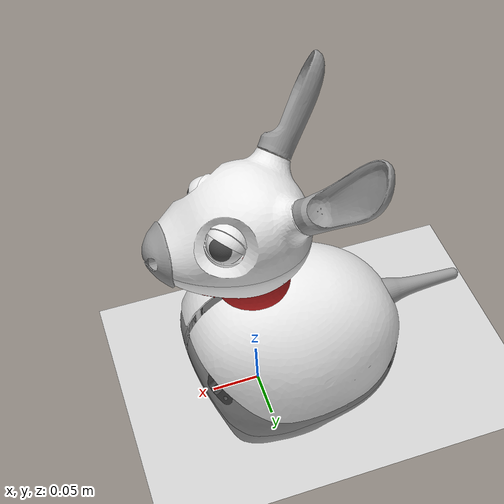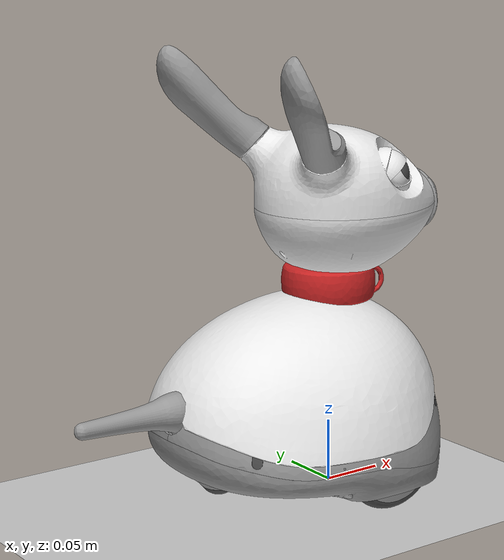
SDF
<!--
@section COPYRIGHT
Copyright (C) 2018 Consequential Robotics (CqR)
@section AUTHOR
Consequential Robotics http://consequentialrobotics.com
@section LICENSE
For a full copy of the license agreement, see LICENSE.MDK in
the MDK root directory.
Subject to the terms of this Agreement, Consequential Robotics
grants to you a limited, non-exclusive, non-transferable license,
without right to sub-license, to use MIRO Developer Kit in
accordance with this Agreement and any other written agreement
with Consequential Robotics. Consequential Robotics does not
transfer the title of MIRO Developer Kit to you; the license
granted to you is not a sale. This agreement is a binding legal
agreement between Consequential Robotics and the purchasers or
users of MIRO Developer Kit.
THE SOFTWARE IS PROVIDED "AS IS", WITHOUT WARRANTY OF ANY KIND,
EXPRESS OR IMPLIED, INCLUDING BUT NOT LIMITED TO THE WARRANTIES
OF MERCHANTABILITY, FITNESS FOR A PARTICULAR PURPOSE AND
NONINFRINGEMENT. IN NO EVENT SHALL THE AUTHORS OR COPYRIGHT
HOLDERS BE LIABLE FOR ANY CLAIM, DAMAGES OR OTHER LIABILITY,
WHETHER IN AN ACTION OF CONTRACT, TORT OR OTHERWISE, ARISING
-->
<?xml version="1.0"?>

<sdf version='1.5'>
	<world name='default'>

		<physics name='default_physics' default='0' type='ode'>
			<max_step_size>0.001</max_step_size>
			<real_time_factor>1</real_time_factor>
			<real_time_update_rate>1000</real_time_update_rate>
		</physics>

		<scene>
			<ambient>0.4 0.4 0.4 1</ambient>
			<background>0.7 0.7 0.7 1</background>
			<shadows>1</shadows>
		</scene>

		<light name='sun' type='directional'>
			<cast_shadows>1</cast_shadows>
			<pose frame=''>0 0 10 0 -0 0</pose>
			<diffuse>0.8 0.8 0.8 1</diffuse>
			<specular>0.1 0.1 0.1 1</specular>
			<attenuation>
				<range>1000</range>
				<constant>0.9</constant>
				<linear>0.01</linear>
				<quadratic>0.001</quadratic>
			</attenuation>
			<direction>-0.5 0.5 -1</direction>
		</light>

		<model name='ground_plane'>
			<static>1</static>
			<link name='link'>
				<collision name='collision'>
					<geometry>
						<plane>
						<normal>0 0 1</normal>
						<size>100 100</size>
						</plane>
					</geometry>
					<surface>
						<friction>
							<ode>
								<mu>1</mu>
								<mu2>1</mu2>
							</ode>
							<torsional>
								<ode/>
							</torsional>
						</friction>
						<contact>
							<ode/>
						</contact>
						<bounce/>
					</surface>
					<max_contacts>10</max_contacts>
				</collision>
				<visual name='visual'>
					<cast_shadows>0</cast_shadows>
					<geometry>
						<plane>
							<normal>0 0 1</normal>
							<size>100 100</size>
						</plane>
					</geometry>
					<material>
						<script>
							<uri>file://media/materials/scripts/gazebo.material</uri>
							<name>Gazebo/Grey</name>
						</script>
					</material>
				</visual>
				<self_collide>0</self_collide>
				<kinematic>0</kinematic>
				<gravity>1</gravity>
			</link>
		</model>

		<gravity>0 0 -9.8</gravity>
		<magnetic_field>6e-06 2.3e-05 -4.2e-05</magnetic_field>
		<atmosphere type='adiabatic'/>

		<spherical_coordinates>
			<surface_model>EARTH_WGS84</surface_model>
			<latitude_deg>0</latitude_deg>
			<longitude_deg>0</longitude_deg>
			<elevation>0</elevation>
			<heading_deg>0</heading_deg>
		</spherical_coordinates>

		<gui fullscreen='0'>
			<camera name='user_camera'>
				<pose frame=''>1.40328 -0.966443 0.97483 0 0.45964 2.34021</pose>
				<view_controller>orbit</view_controller>
				<projection_type>perspective</projection_type>
			</camera>
		</gui>

		 <include>
                        <name>sim01</name>
                        <uri>model://miro_model</uri>
                        <pose>0 0 0 0 0 0</pose>
                </include>

	</world>
</sdf>

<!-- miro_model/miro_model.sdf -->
<sdf version="1.5">
	<model name="miro_robot">

		<include>
			<uri>model://miro_model/components/miro_body</uri>
			<pose>0 0 0 0 0 0</pose>
		</include>

		<include>
			<uri>model://miro_model/components/miro_tail</uri>
			<pose>0 0 0 0 0 0</pose>
		</include>

		<joint type="revolute" name="body_neck">
			<pose>-0.002 0 0.081 0 0 0</pose>
			<parent>miro_body::body</parent>
			<child>miro_neck::neck</child>
			<axis>
				<xyz>0 1 0</xyz>
				<limit>
					<lower>0</lower>
					<upper>1.57</upper>
				</limit>
				<dynamics>
					<spring_stiffness>0.4</spring_stiffness>
					<spring_reference>0.0</spring_reference>
					<friction>0.01</friction>
					<damping>0.1</damping>
				</dynamics>
			</axis>
		</joint>

		<include>
			<uri>model://miro_model/components/miro_neck</uri>
			<pose>0 0 0 0 0 0</pose>
		</include>

		<joint type="revolute" name="neck_gmbl">
			<pose>-0.002 0 0.201 0 0 0</pose>
			<parent>miro_neck::neck</parent>
			<child>miro_gmbl::gmbl</child>
			<axis>
				<xyz>0 0 1</xyz>
				<limit>
					<lower>-1.57</lower>
					<upper>1.57</upper>
				</limit>
				<dynamics>
					<friction>0.01</friction>
					<damping>0.1</damping>
				</dynamics>
			</axis>
		</joint>

		<include>
			<uri>model://miro_model/components/miro_gmbl</uri>
			<pose>0 0 0 0 0 0</pose>
		</include>

		<joint type="revolute" name="gmbl_head">
			<pose>-0.002 0 0.201 0 0 0</pose>
			<parent>miro_gmbl::gmbl</parent>
			<child>miro_head::head</child>
			<axis>
				<xyz>0 1 0</xyz>
				<limit>
					<lower>-1.57</lower>
					<upper>1.57</upper>
				</limit>
				<dynamics>
					<spring_stiffness>0.1</spring_stiffness>
					<spring_reference>-0.5</spring_reference>
					<friction>0.01</friction>
					<damping>0.1</damping>
				</dynamics>
			</axis>
		</joint>

		<include>
			<uri>model://miro_model/components/miro_head</uri>
			<pose>0 0 0 0 0 0</pose>
		</include>

		<plugin name="miro_model" filename="libmiro_gazebo.so"/>

	</model>
</sdf>

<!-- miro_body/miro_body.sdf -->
<sdf version="1.5">
  <model name="miro_body">
    <link name="body">
      <inertial>
        <pose>-0.060 0 0.050 0 0 0</pose>
        <mass>1.570796</mass>
        <inertia>
          <ixx>0.00523599</ixx>
          <ixy>0.0</ixy>
          <ixz>0.0</ixz>
          <iyy>0.00523599</iyy>
          <iyz>0.0</iyz>
          <izz>0.00785398</izz>
        </inertia>
      </inertial>
      <visual name="visual_valance">
        <pose>0 0 0 0 0 0</pose>
        <geometry>
          <mesh>
            <uri>model://miro_model/meshes/valance.dae</uri>
          </mesh>
        </geometry>
        <material>
          <script>
            <uri>file://media/materials/scripts/gazebo.material</uri>
            <name>Gazebo/Grey</name>
          </script>
        </material>
      </visual>
      <collision name="collision_valance">
        <pose>0 0 0 0 0 0</pose>
        <geometry>
          <mesh>
            <uri>model://miro_model/meshes/valance_collision.dae</uri>
          </mesh>
        </geometry>
        <surface>
          <friction>
            <ode>
              <mu>0.1</mu>
              <mu2>0.1</mu2>
            </ode>
          </friction>
        </surface>
      </collision>
      <visual name="visual_skirt_lh">
        <pose>0 0 0 0 0 0</pose>
        <geometry>
          <mesh>
            <uri>model://miro_model/meshes/skirt_lh.dae</uri>
          </mesh>
        </geometry>
        <material>
          <script>
            <uri>file://media/materials/scripts/gazebo.material</uri>
            <name>Gazebo/Grey</name>
          </script>
        </material>
      </visual>
      <collision name="collision_skirt_lh">
        <pose>0 0 0 0 0 0</pose>
        <geometry>
          <mesh>
            <uri>model://miro_model/meshes/skirt_lh_collision.dae</uri>
          </mesh>
        </geometry>
        <surface>
          <friction>
            <ode>
              <mu>0.1</mu>
              <mu2>0.1</mu2>
            </ode>
          </friction>
        </surface>
      </collision>
      <visual name="visual_skirt_rh">
        <pose>0 0 0 0 0 0</pose>
        <geometry>
          <mesh>
            <uri>model://miro_model/meshes/skirt_rh.dae</uri>
          </mesh>
        </geometry>
        <material>
          <script>
            <uri>file://media/materials/scripts/gazebo.material</uri>
            <name>Gazebo/Grey</name>
          </script>
        </material>
      </visual>
      <collision name="collision_skirt_rh">
        <pose>0 0 0 0 0 0</pose>
        <geometry>
          <mesh>
            <uri>model://miro_model/meshes/skirt_rh_collision.dae</uri>
          </mesh>
        </geometry>
        <surface>
          <friction>
            <ode>
              <mu>0.1</mu>
              <mu2>0.1</mu2>
            </ode>
          </friction>
        </surface>
      </collision>
      <visual name="visual_cliff_sensor_L_asm">
        <pose>0 0 0 0 0 0</pose>
        <geometry>
          <mesh>
            <uri>model://miro_model/meshes/cliff_sensor_L_asm.dae</uri>
          </mesh>
        </geometry>
        <material>
          <script>
            <uri>file://media/materials/scripts/gazebo.material</uri>
            <name>Gazebo/DarkGrey</name>
          </script>
        </material>
      </visual>
      <visual name="visual_cliff_sensor_R_asm">
        <pose>0 0 0 0 0 0</pose>
        <geometry>
          <mesh>
            <uri>model://miro_model/meshes/cliff_sensor_R_asm.dae</uri>
          </mesh>
        </geometry>
        <material>
          <script>
            <uri>file://media/materials/scripts/gazebo.material</uri>
            <name>Gazebo/DarkGrey</name>
          </script>
        </material>
      </visual>
      <visual name="visual_light_sensor_holder_asm_L">
        <pose>0 0 0 0 0 0</pose>
        <geometry>
          <mesh>
            <uri>model://miro_model/meshes/light_sensor_holder_asm_L.dae</uri>
          </mesh>
        </geometry>
        <material>
          <script>
            <uri>file://media/materials/scripts/gazebo.material</uri>
            <name>Gazebo/DarkGrey</name>
          </script>
        </material>
      </visual>
      <visual name="visual_light_sensor_holder_asm_R">
        <pose>0 0 0 0 0 0</pose>
        <geometry>
          <mesh>
            <uri>model://miro_model/meshes/light_sensor_holder_asm_R.dae</uri>
          </mesh>
        </geometry>
        <material>
          <script>
            <uri>file://media/materials/scripts/gazebo.material</uri>
            <name>Gazebo/DarkGrey</name>
          </script>
        </material>
      </visual>
      <visual name="visual_neck_mount">
        <pose>0 0 0 0 0 0</pose>
        <geometry>
          <mesh>
            <uri>model://miro_model/meshes/neck_mount.dae</uri>
          </mesh>
        </geometry>
        <material>
          <script>
            <uri>file://media/materials/scripts/gazebo.material</uri>
            <name>Gazebo/Red</name>
          </script>
        </material>
      </visual>
      <visual name="visual_body_shell">
        <pose>0 0 0 0 0 0</pose>
        <geometry>
          <mesh>
            <uri>model://miro_model/meshes/body_shell.dae</uri>
          </mesh>
        </geometry>
        <material>
          <script>
            <uri>file://media/materials/scripts/gazebo.material</uri>
            <name>Gazebo/White</name>
          </script>
        </material>
      </visual>
      <collision name="collision_body_shell">
        <pose>0 0 0 0 0 0</pose>
        <geometry>
          <mesh>
            <uri>model://miro_model/meshes/body_shell_collision.dae</uri>
          </mesh>
        </geometry>
        <surface>
          <friction>
            <ode>
              <mu>0.1</mu>
              <mu2>0.1</mu2>
            </ode>
          </friction>
        </surface>
      </collision>
      <visual name="visual_slider">
        <pose>0 0 0 0 0 0</pose>
        <geometry>
          <mesh>
            <uri>model://miro_model/meshes/slider.dae</uri>
          </mesh>
        </geometry>
        <material>
          <script>
            <uri>file://media/materials/scripts/gazebo.material</uri>
            <name>Gazebo/DarkGrey</name>
          </script>
        </material>
      </visual>
      <collision name="collision_slider">
        <pose>0 0 0 0 0 0</pose>
        <geometry>
          <mesh>
            <uri>model://miro_model/meshes/slider_collision.dae</uri>
          </mesh>
        </geometry>
        <surface>
          <friction>
            <ode>
              <mu>0.01</mu>
              <mu2>0.01</mu2>
            </ode>
          </friction>
        </surface>
      </collision>
      <visual name="visual_battery_box">
        <pose>0 0 0 0 0 0</pose>
        <geometry>
          <mesh>
            <uri>model://miro_model/meshes/battery_box.dae</uri>
          </mesh>
        </geometry>
        <material>
          <script>
            <uri>file://media/materials/scripts/gazebo.material</uri>
            <name>Gazebo/Grey</name>
          </script>
        </material>
      </visual>
      <visual name="visual_battery_box_cover">
        <pose>0 0 0 0 0 0</pose>
        <geometry>
          <mesh>
            <uri>model://miro_model/meshes/battery_box_cover.dae</uri>
          </mesh>
        </geometry>
        <material>
          <script>
            <uri>file://media/materials/scripts/gazebo.material</uri>
            <name>Gazebo/Grey</name>
          </script>
        </material>
      </visual>
      <!-- imu -->
      <sensor name="acc_body" type="imu">
        <pose>0 0 0 0 0 0</pose>
        <always_on>1</always_on>
        <update_rate>50</update_rate>
        <visualize>false</visualize>
      </sensor>
      <!-- cliff -->
      <sensor name="cliff_l" type="sonar">
        <pose>0.062 0.055 0.085 0 -0.52 0</pose>
        <always_on>1</always_on>
        <update_rate>50</update_rate>
        <visualize>false</visualize>
        <sonar>
          <min>0.0</min>
          <max>0.5</max>
          <radius>0.025</radius>
        </sonar>
      </sensor>
      <!-- cliff -->
      <sensor name="cliff_r" type="sonar">
        <pose>0.062 -0.055 0.085 0 -0.52 0</pose>
        <always_on>1</always_on>
        <update_rate>50</update_rate>
        <visualize>false</visualize>
        <sonar>
          <min>0.0</min>
          <max>0.5</max>
          <radius>0.025</radius>
        </sonar>
      </sensor>
      <!-- light -->
      <sensor name="lightfl" type="camera">
        <pose>0.055 0.065 0.08 0 -0.26 0.52</pose>
        <camera>
          <horizontal_fov>1.57</horizontal_fov>
          <image>
            <width>16</width>
            <height>12</height>
          </image>
          <clip>
            <near>0.01</near>
            <far>2</far>
          </clip>
        </camera>
        <always_on>1</always_on>
        <update_rate>50</update_rate>
        <visualize>false</visualize>
      </sensor>
      <!-- light -->
      <sensor name="lightfr" type="camera">
        <pose>0.055 -0.065 0.08 0 -0.26 -0.52</pose>
        <camera>
          <horizontal_fov>1.57</horizontal_fov>
          <image>
            <width>16</width>
            <height>12</height>
          </image>
          <clip>
            <near>0.01</near>
            <far>2</far>
          </clip>
        </camera>
        <always_on>1</always_on>
        <update_rate>50</update_rate>
        <visualize>false</visualize>
      </sensor>
      <!-- light -->
      <sensor name="lightrl" type="camera">
        <pose>-0.125 0.072 0.06 0 -0.26 2.61</pose>
        <camera>
          <horizontal_fov>1.57</horizontal_fov>
          <image>
            <width>16</width>
            <height>12</height>
          </image>
          <clip>
            <near>0.01</near>
            <far>5</far>
          </clip>
        </camera>
        <always_on>1</always_on>
        <update_rate>50</update_rate>
        <visualize>false</visualize>
      </sensor>
      <!-- light -->
      <sensor name="lightrr" type="camera">
        <pose>-0.125 -0.072 0.06 0 -0.26 -2.61</pose>
        <camera>
          <horizontal_fov>1.57</horizontal_fov>
          <image>
            <width>16</width>
            <height>12</height>
          </image>
          <clip>
            <near>0.01</near>
            <far>5</far>
          </clip>
        </camera>
        <always_on>1</always_on>
        <update_rate>50</update_rate>
        <visualize>false</visualize>
      </sensor>
    </link>
    <link name="wheel_lh">
      <inertial>
        <pose>0.000630 0.077790 0.044838 0 0 0</pose>
        <mass>0.134041</mass>
        <inertia>
          <ixx>0.00014298</ixx>
          <ixy>0.0</ixy>
          <ixz>0.0</ixz>
          <iyy>0.00014298</iyy>
          <iyz>0.0</iyz>
          <izz>0.00014298</izz>
        </inertia>
      </inertial>
      <visual name="visual_wheel_tyre_lh">
        <pose>0 0 0 0 0 0</pose>
        <geometry>
          <mesh>
            <uri>model://miro_model/meshes/wheel_tyre_lh.dae</uri>
          </mesh>
        </geometry>
        <material>
          <script>
            <uri>file://media/materials/scripts/gazebo.material</uri>
            <name>Gazebo/DarkGrey</name>
          </script>
        </material>
      </visual>
      <collision name="collision_wheel_tyre_lh">
        <pose>0 0 0 0 0 0</pose>
        <geometry>
          <mesh>
            <uri>model://miro_model/meshes/wheel_tyre_lh_collision.dae</uri>
          </mesh>
        </geometry>
        <surface>
          <friction>
            <ode>
              <mu>1</mu>
              <mu2>1</mu2>
            </ode>
          </friction>
        </surface>
      </collision>
      <visual name="visual_wheel_rim_lh">
        <pose>0 0 0 0 0 0</pose>
        <geometry>
          <mesh>
            <uri>model://miro_model/meshes/wheel_rim_lh.dae</uri>
          </mesh>
        </geometry>
        <material>
          <script>
            <uri>file://media/materials/scripts/gazebo.material</uri>
            <name>Gazebo/Grey</name>
          </script>
        </material>
      </visual>
    </link>
    <link name="wheel_rh">
      <inertial>
        <pose>0.000630 -0.077790 0.044838 0 0 0</pose>
        <mass>0.134041</mass>
        <inertia>
          <ixx>0.00014298</ixx>
          <ixy>0.0</ixy>
          <ixz>0.0</ixz>
          <iyy>0.00014298</iyy>
          <iyz>0.0</iyz>
          <izz>0.00014298</izz>
        </inertia>
      </inertial>
      <visual name="visual_wheel_tyre_rh">
        <pose>0 0 0 0 0 0</pose>
        <geometry>
          <mesh>
            <uri>model://miro_model/meshes/wheel_tyre_rh.dae</uri>
          </mesh>
        </geometry>
        <material>
          <script>
            <uri>file://media/materials/scripts/gazebo.material</uri>
            <name>Gazebo/DarkGrey</name>
          </script>
        </material>
      </visual>
      <collision name="collision_wheel_tyre_rh">
        <pose>0 0 0 0 0 0</pose>
        <geometry>
          <mesh>
            <uri>model://miro_model/meshes/wheel_tyre_rh_collision.dae</uri>
          </mesh>
        </geometry>
        <surface>
          <friction>
            <ode>
              <mu>1</mu>
              <mu2>1</mu2>
            </ode>
          </friction>
        </surface>
      </collision>
      <visual name="visual_wheel_rim_rh">
        <pose>0 0 0 0 0 0</pose>
        <geometry>
          <mesh>
            <uri>model://miro_model/meshes/wheel_rim_rh.dae</uri>
          </mesh>
        </geometry>
        <material>
          <script>
            <uri>file://media/materials/scripts/gazebo.material</uri>
            <name>Gazebo/Grey</name>
          </script>
        </material>
      </visual>
    </link>
    <joint type="revolute" name="body_wheel_lh">
      <pose>0.000630 0.077790 0.044838 0 0 0</pose>
      <parent>body</parent>
      <child>wheel_lh</child>
      <axis>
        <xyz>0 0.999657 0.026185</xyz>
        <dynamics>
          <friction>0.1</friction>
          <damping>0.1</damping>
        </dynamics>
      </axis>
    </joint>
    <joint type="revolute" name="body_wheel_rh">
      <pose>0.000630 -0.077790 0.044838 0 0 0</pose>
      <parent>body</parent>
      <child>wheel_rh</child>
      <axis>
        <xyz>0 0.999657 -0.026185</xyz>
        <dynamics>
          <friction>0.1</friction>
          <damping>0.1</damping>
        </dynamics>
      </axis>
    </joint>
  </model>
</sdf>

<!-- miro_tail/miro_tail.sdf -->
<sdf version="1.5">
  <model name="miro_tail">
    <link name="tail_gmbl">
      <inertial>
        <pose>-0.143 0 0.085 0 0 0</pose>
        <mass>0.056549</mass>
        <inertia>
          <ixx>0.00003393</ixx>
          <ixy>0.0</ixy>
          <ixz>0.0</ixz>
          <iyy>0.00003393</iyy>
          <iyz>0.0</iyz>
          <izz>0.00003393</izz>
        </inertia>
      </inertial>
    </link>
    <joint type="revolute" name="body_tail_gmbl">
      <pose>-0.143 0 0.085 0 0 0</pose>
      <parent>miro_body::body</parent>
      <child>miro_tail::tail_gmbl</child>
      <axis>
        <xyz>0 1 0</xyz>
        <limit>
          <lower>-1.57</lower>
          <upper>1.57</upper>
        </limit>
        <dynamics>
          <friction>0.01</friction>
          <damping>0.02</damping>
        </dynamics>
      </axis>
    </joint>
    <link name="tail">
      <inertial>
        <pose>-0.143 0 0.085 0 0 0</pose>
        <mass>0.056549</mass>
        <inertia>
          <ixx>0.00003393</ixx>
          <ixy>0.0</ixy>
          <ixz>0.0</ixz>
          <iyy>0.00003393</iyy>
          <iyz>0.0</iyz>
          <izz>0.00003393</izz>
        </inertia>
      </inertial>
      <visual name="visual_tail">
        <pose>0 0 0 0 0 0</pose>
        <geometry>
          <mesh>
            <uri>model://miro_model/meshes/tail.dae</uri>
          </mesh>
        </geometry>
        <material>
          <script>
            <uri>file://media/materials/scripts/gazebo.material</uri>
            <name>Gazebo/Grey</name>
          </script>
        </material>
      </visual>
      <collision name="collision_tail">
        <pose>0 0 0 0 0 0</pose>
        <geometry>
          <mesh>
            <uri>model://miro_model/meshes/tail_collision.dae</uri>
          </mesh>
        </geometry>
        <surface>
          <friction>
            <ode>
              <mu>0.1</mu>
              <mu2>0.1</mu2>
            </ode>
          </friction>
        </surface>
      </collision>
    </link>
    <joint type="revolute" name="tail_gmbl_tail">
      <pose>-0.143 0 0.085 0 0 0</pose>
      <parent>miro_tail::tail_gmbl</parent>
      <child>miro_tail::tail</child>
      <axis>
        <xyz>0 0 1</xyz>
        <limit>
          <lower>-1.57</lower>
          <upper>1.57</upper>
        </limit>
        <dynamics>
          <friction>0.01</friction>
          <damping>0.02</damping>
        </dynamics>
      </axis>
    </joint>
  </model>
</sdf>

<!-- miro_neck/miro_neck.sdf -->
<sdf version="1.5">
  <model name="miro_neck">
    <link name="neck">
      <inertial>
        <pose>-0.002 0 0.141 0 0 0</pose>
        <mass>0.075398</mass>
        <inertia>
          <ixx>0.00009802</ixx>
          <ixy>0.0</ixy>
          <ixz>0.0</ixz>
          <iyy>0.00009802</iyy>
          <iyz>0.0</iyz>
          <izz>0.00001508</izz>
        </inertia>
      </inertial>
      <visual name="visual_neck_member_main">
        <pose>0 0 0 0 0 0</pose>
        <geometry>
          <mesh>
            <uri>model://miro_model/meshes/neck_member_main.dae</uri>
          </mesh>
        </geometry>
        <material>
          <script>
            <uri>file://media/materials/scripts/gazebo.material</uri>
            <name>Gazebo/Orange</name>
          </script>
        </material>
      </visual>
      <visual name="visual_neck_mount_upper_pin">
        <pose>0 0 0 0 0 0</pose>
        <geometry>
          <mesh>
            <uri>model://miro_model/meshes/neck_mount_upper_pin.dae</uri>
          </mesh>
        </geometry>
        <material>
          <script>
            <uri>file://media/materials/scripts/gazebo.material</uri>
            <name>Gazebo/YellowGlow</name>
          </script>
        </material>
      </visual>
      <visual name="visual_neck_mount_lower_pin">
        <pose>0 0 0 0 0 0</pose>
        <geometry>
          <mesh>
            <uri>model://miro_model/meshes/neck_mount_lower_pin.dae</uri>
          </mesh>
        </geometry>
        <material>
          <script>
            <uri>file://media/materials/scripts/gazebo.material</uri>
            <name>Gazebo/YellowGlow</name>
          </script>
        </material>
      </visual>
    </link>
  </model>
</sdf>

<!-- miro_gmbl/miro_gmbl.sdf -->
<sdf version="1.5">
  <model name="miro_gmbl">
    <link name="gmbl">
      <inertial>
        <pose>-0.002 0 0.171 0 0 0</pose>
        <mass>0.039270</mass>
        <inertia>
          <ixx>0.00002487</ixx>
          <ixy>0.0</ixy>
          <ixz>0.0</ixz>
          <iyy>0.00002487</iyy>
          <iyz>0.0</iyz>
          <izz>0.00004909</izz>
        </inertia>
      </inertial>
      <visual name="visual_collar">
        <pose>0 0 0 0 0 0</pose>
        <geometry>
          <mesh>
            <uri>model://miro_model/meshes/collar.dae</uri>
          </mesh>
        </geometry>
        <material>
          <script>
            <uri>file://media/materials/scripts/gazebo.material</uri>
            <name>Gazebo/Red</name>
          </script>
        </material>
      </visual>
    </link>
  </model>
</sdf>

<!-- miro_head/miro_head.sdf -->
<sdf version="1.5">
  <model name="miro_head">
    <link name="head">
      <inertial>
        <pose>-0.002 0 0.221 0 0 0</pose>
        <mass>0.261799</mass>
        <inertia>
          <ixx>0.00043633</ixx>
          <ixy>0.0</ixy>
          <ixz>0.0</ixz>
          <iyy>0.00043633</iyy>
          <iyz>0.0</iyz>
          <izz>0.00043633</izz>
        </inertia>
      </inertial>
      <visual name="visual_head_lower">
        <pose>0 0 0 0 0 0</pose>
        <geometry>
          <mesh>
            <uri>model://miro_model/meshes/head_lower.dae</uri>
          </mesh>
        </geometry>
        <material>
          <script>
            <uri>file://media/materials/scripts/gazebo.material</uri>
            <name>Gazebo/White</name>
          </script>
        </material>
      </visual>
      <collision name="collision_head_lower">
        <pose>0 0 0 0 0 0</pose>
        <geometry>
          <mesh>
            <uri>model://miro_model/meshes/head_lower_collision.dae</uri>
          </mesh>
        </geometry>
        <surface>
          <friction>
            <ode>
              <mu>0.1</mu>
              <mu2>0.1</mu2>
            </ode>
          </friction>
        </surface>
      </collision>
      <visual name="visual_head_upper">
        <pose>0 0 0 0 0 0</pose>
        <geometry>
          <mesh>
            <uri>model://miro_model/meshes/head_upper.dae</uri>
          </mesh>
        </geometry>
        <material>
          <script>
            <uri>file://media/materials/scripts/gazebo.material</uri>
            <name>Gazebo/White</name>
          </script>
        </material>
      </visual>
      <collision name="collision_head_upper">
        <pose>0 0 0 0 0 0</pose>
        <geometry>
          <mesh>
            <uri>model://miro_model/meshes/head_upper_collision.dae</uri>
          </mesh>
        </geometry>
        <surface>
          <friction>
            <ode>
              <mu>0.1</mu>
              <mu2>0.1</mu2>
            </ode>
          </friction>
        </surface>
      </collision>
      <visual name="visual_eyelid_lower_lh">
        <pose>0 0 0 0 0 0</pose>
        <geometry>
          <mesh>
            <uri>model://miro_model/meshes/eyelid_lower_lh.dae</uri>
          </mesh>
        </geometry>
        <material>
          <script>
            <uri>file://media/materials/scripts/gazebo.material</uri>
            <name>Gazebo/White</name>
          </script>
        </material>
      </visual>
      <visual name="visual_eyelid_lower_rh">
        <pose>0 0 0 0 0 0</pose>
        <geometry>
          <mesh>
            <uri>model://miro_model/meshes/eyelid_lower_rh.dae</uri>
          </mesh>
        </geometry>
        <material>
          <script>
            <uri>file://media/materials/scripts/gazebo.material</uri>
            <name>Gazebo/White</name>
          </script>
        </material>
      </visual>
      <visual name="visual_nose">
        <pose>0 0 0 0 0 0</pose>
        <geometry>
          <mesh>
            <uri>model://miro_model/meshes/nose.dae</uri>
          </mesh>
        </geometry>
        <material>
          <script>
            <uri>file://media/materials/scripts/gazebo.material</uri>
            <name>Gazebo/Grey</name>
          </script>
        </material>
      </visual>
      <collision name="collision_nose">
        <pose>0 0 0 0 0 0</pose>
        <geometry>
          <mesh>
            <uri>model://miro_model/meshes/nose_collision.dae</uri>
          </mesh>
        </geometry>
        <surface>
          <friction>
            <ode>
              <mu>0.3</mu>
              <mu2>0.3</mu2>
            </ode>
          </friction>
        </surface>
      </collision>
      <visual name="visual_eyeball_lh">
        <pose>0 0 0 0 0 0</pose>
        <geometry>
          <mesh>
            <uri>model://miro_model/meshes/eyeball_lh.dae</uri>
          </mesh>
        </geometry>
        <material>
          <script>
            <uri>file://media/materials/scripts/gazebo.material</uri>
            <name>Gazebo/White</name>
          </script>
        </material>
      </visual>
      <visual name="visual_eyeball_rh">
        <pose>0 0 0 0 0 0</pose>
        <geometry>
          <mesh>
            <uri>model://miro_model/meshes/eyeball_rh.dae</uri>
          </mesh>
        </geometry>
        <material>
          <script>
            <uri>file://media/materials/scripts/gazebo.material</uri>
            <name>Gazebo/White</name>
          </script>
        </material>
      </visual>
      <visual name="visual_iris_lh">
        <pose>0 0 0 0 0 0</pose>
        <geometry>
          <mesh>
            <uri>model://miro_model/meshes/iris_lh.dae</uri>
          </mesh>
        </geometry>
        <material>
          <script>
            <uri>file://media/materials/scripts/gazebo.material</uri>
            <name>Gazebo/DarkGrey</name>
          </script>
        </material>
      </visual>
      <visual name="visual_iris_rh">
        <pose>0 0 0 0 0 0</pose>
        <geometry>
          <mesh>
            <uri>model://miro_model/meshes/iris_rh.dae</uri>
          </mesh>
        </geometry>
        <material>
          <script>
            <uri>file://media/materials/scripts/gazebo.material</uri>
            <name>Gazebo/DarkGrey</name>
          </script>
        </material>
      </visual>
      <!-- eye_l -->
      <sensor name="eye_l" type="camera">
        <pose>0.0385 0.0434 0.2595 -0.27 -0.7854 0.3665</pose>
        <camera>
          <horizontal_fov>1.82</horizontal_fov>
          <image>
            <width>640</width>
            <height>480</height>
          </image>
          <clip>
            <near>0.001</near>
            <far>100</far>
          </clip>
          <distortion>
            <k1>-0.75</k1>
            <k2>0.25</k2>
            <k3>0.0</k3>
            <p1>0.0</p1>
            <p2>0.0</p2>
            <center>0.5 0.5</center>
          </distortion>
        </camera>
        <always_on>1</always_on>
        <update_rate>5</update_rate>
        <visualize>false</visualize>
      </sensor>
      <!-- eye_r -->
      <sensor name="eye_r" type="camera">
        <pose>0.0385 -0.0434 0.2595 0.27 -0.7854 -0.3665</pose>
        <camera>
          <horizontal_fov>1.82</horizontal_fov>
          <image>
            <width>640</width>
            <height>480</height>
          </image>
          <clip>
            <near>0.001</near>
            <far>100</far>
          </clip>
          <distortion>
            <k1>-0.75</k1>
            <k2>0.25</k2>
            <k3>0.0</k3>
            <p1>0.0</p1>
            <p2>0.0</p2>
            <center>0.5 0.5</center>
          </distortion>
        </camera>
        <always_on>1</always_on>
        <update_rate>5</update_rate>
        <visualize>false</visualize>
      </sensor>
      <!-- gopro -->
      <sensor name="gopro" type="camera">
        <pose>0 0 1.0 0 1.22 0</pose>
        <camera>
          <horizontal_fov>1.0472</horizontal_fov>
          <image>
            <width>640</width>
            <height>480</height>
          </image>
          <clip>
            <near>0.01</near>
            <far>2</far>
          </clip>
        </camera>
        <always_on>1</always_on>
        <update_rate>5</update_rate>
        <visualize>false</visualize>
      </sensor>
      <!-- imu -->
      <sensor name="acc_head" type="imu">
        <pose>0 0 0 0 0 0</pose>
        <always_on>1</always_on>
        <update_rate>50</update_rate>
        <visualize>false</visualize>
      </sensor>
      <!-- sonar -->
      <sensor name="sonar" type="sonar">
        <pose>0.1 0 0.235 0 -1.5708 0</pose>
        <always_on>1</always_on>
        <update_rate>50</update_rate>
        <visualize>false</visualize>
        <sonar>
          <min>0.0</min>
          <max>1.0</max>
          <radius>0.05</radius>
        </sonar>
      </sensor>
    </link>
    <link name="eyelid_lh">
      <inertial>
        <pose>0.029 0.032 0.252 0 0 0</pose>
        <mass>0.016755</mass>
        <inertia>
          <ixx>0.00000447</ixx>
          <ixy>0.0</ixy>
          <ixz>0.0</ixz>
          <iyy>0.00000447</iyy>
          <iyz>0.0</iyz>
          <izz>0.00000447</izz>
        </inertia>
      </inertial>
      <visual name="visual_eyelid_lh">
        <pose>0 0 0 0 0 0</pose>
        <geometry>
          <mesh>
            <uri>model://miro_model/meshes/eyelid_lh.dae</uri>
          </mesh>
        </geometry>
        <material>
          <script>
            <uri>file://media/materials/scripts/gazebo.material</uri>
            <name>Gazebo/White</name>
          </script>
        </material>
      </visual>
    </link>
    <link name="eyelid_rh">
      <inertial>
        <pose>0.029 -0.032 0.252 0 0 0</pose>
        <mass>0.016755</mass>
        <inertia>
          <ixx>0.00000447</ixx>
          <ixy>0.0</ixy>
          <ixz>0.0</ixz>
          <iyy>0.00000447</iyy>
          <iyz>0.0</iyz>
          <izz>0.00000447</izz>
        </inertia>
      </inertial>
      <visual name="visual_eyelid_rh">
        <pose>0 0 0 0 0 0</pose>
        <geometry>
          <mesh>
            <uri>model://miro_model/meshes/eyelid_rh.dae</uri>
          </mesh>
        </geometry>
        <material>
          <script>
            <uri>file://media/materials/scripts/gazebo.material</uri>
            <name>Gazebo/White</name>
          </script>
        </material>
      </visual>
    </link>
    <!-- joint axes are from "eyelid axes.txt" in FreeCAD source folder -->
    <joint type="revolute" name="head_eyelid_lh">
      <pose>0.029 0.032 0.252 0 0 0</pose>
      <parent>head</parent>
      <child>eyelid_lh</child>
      <axis>
        <xyz>-0.675 0.675 -0.2978</xyz>
        <limit>
          <lower>-1.57</lower>
          <upper>1.57</upper>
        </limit>
        <dynamics>
          <friction>0.1</friction>
          <damping>0.1</damping>
          <spring_reference>-0.5</spring_reference>
          <spring_stiffness>0.02</spring_stiffness>
        </dynamics>
      </axis>
      <physics>
        <ode>
          <cfm_damping>true</cfm_damping>
          <implicit_spring_damper>true</implicit_spring_damper>
        </ode>
      </physics>
    </joint>
    <joint type="revolute" name="head_eyelid_rh">
      <pose>0.029 -0.032 0.252 0 0 0</pose>
      <parent>head</parent>
      <child>eyelid_rh</child>
      <axis>
        <xyz>0.675 0.675 0.2978</xyz>
        <limit>
          <lower>-1.57</lower>
          <upper>1.57</upper>
        </limit>
        <dynamics>
          <friction>0.1</friction>
          <damping>0.1</damping>
          <spring_reference>-0.5</spring_reference>
          <spring_stiffness>0.02</spring_stiffness>
        </dynamics>
      </axis>
      <physics>
        <ode>
          <cfm_damping>true</cfm_damping>
          <implicit_spring_damper>true</implicit_spring_damper>
        </ode>
      </physics>
    </joint>
    <link name="ear_lh">
      <inertial>
        <pose>-0.0437 0.0474 0.2773 0 0 0</pose>
        <mass>0.056549</mass>
        <inertia>
          <ixx>0.00003393</ixx>
          <ixy>0.0</ixy>
          <ixz>0.0</ixz>
          <iyy>0.00003393</iyy>
          <iyz>0.0</iyz>
          <izz>0.00003393</izz>
        </inertia>
      </inertial>
      <visual name="visual_ear_lh">
        <pose>0 0 0 0 0 0</pose>
        <geometry>
          <mesh>
            <uri>model://miro_model/meshes/ear_lh.dae</uri>
          </mesh>
        </geometry>
        <material>
          <script>
            <uri>file://media/materials/scripts/gazebo.material</uri>
            <name>Gazebo/Grey</name>
          </script>
        </material>
      </visual>
      <collision name="collision_ear_lh">
        <pose>0 0 0 0 0 0</pose>
        <geometry>
          <mesh>
            <uri>model://miro_model/meshes/ear_lh_collision.dae</uri>
          </mesh>
        </geometry>
        <surface>
          <friction>
            <ode>
              <mu>0.3</mu>
              <mu2>0.3</mu2>
            </ode>
          </friction>
        </surface>
      </collision>
    </link>
    <link name="ear_rh">
      <inertial>
        <pose>-0.0437 -0.0474 0.2773 0 0 0</pose>
        <mass>0.056549</mass>
        <inertia>
          <ixx>0.00003393</ixx>
          <ixy>0.0</ixy>
          <ixz>0.0</ixz>
          <iyy>0.00003393</iyy>
          <iyz>0.0</iyz>
          <izz>0.00003393</izz>
        </inertia>
      </inertial>
      <visual name="visual_ear_rh">
        <pose>0 0 0 0 0 0</pose>
        <geometry>
          <mesh>
            <uri>model://miro_model/meshes/ear_rh.dae</uri>
          </mesh>
        </geometry>
        <material>
          <script>
            <uri>file://media/materials/scripts/gazebo.material</uri>
            <name>Gazebo/Grey</name>
          </script>
        </material>
      </visual>
      <collision name="collision_ear_rh">
        <pose>0 0 0 0 0 0</pose>
        <geometry>
          <mesh>
            <uri>model://miro_model/meshes/ear_rh_collision.dae</uri>
          </mesh>
        </geometry>
        <surface>
          <friction>
            <ode>
              <mu>0.3</mu>
              <mu2>0.3</mu2>
            </ode>
          </friction>
        </surface>
      </collision>
    </link>
    <joint type="revolute" name="head_ear_lh">
      <pose>-0.0437 0.0474 0.2773 0 0 0</pose>
      <parent>head</parent>
      <child>ear_lh</child>
      <axis>
        <xyz>-0.5730 0.4344 0.6949</xyz>
        <limit>
          <lower>-1.57</lower>
          <upper>1.57</upper>
        </limit>
        <dynamics>
          <friction>0.01</friction>
          <damping>0.001</damping>
        </dynamics>
      </axis>
    </joint>
    <joint type="revolute" name="head_ear_rh">
      <pose>-0.0437 -0.0474 0.2773 0 0 0</pose>
      <parent>head</parent>
      <child>ear_rh</child>
      <axis>
        <xyz>-0.5730 -0.4344 0.6949</xyz>
        <limit>
          <lower>-1.57</lower>
          <upper>1.57</upper>
        </limit>
        <dynamics>
          <friction>0.01</friction>
          <damping>0.001</damping>
        </dynamics>
      </axis>
    </joint>
  </model>
</sdf>
